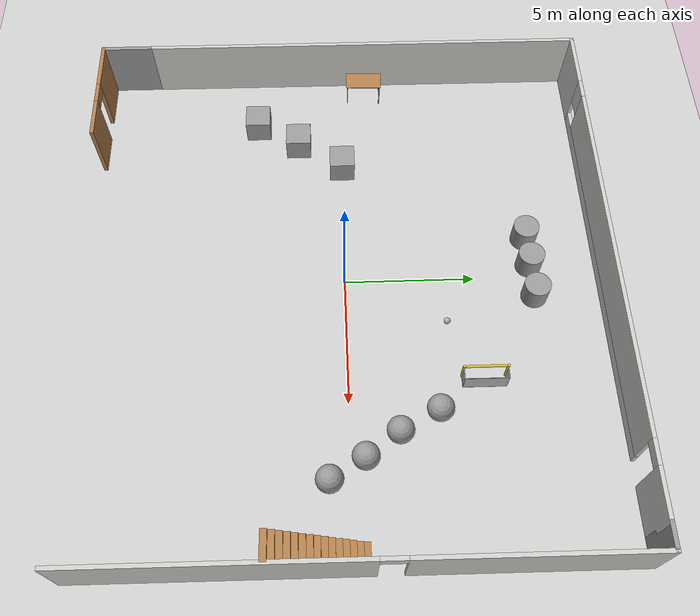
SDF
<sdf version="1.7">
 <world name="default">
  <light name="sun" type="directional">
   <pose>0 0 10 0 -0 0</pose>
   <diffuse>0.8 0.8 0.8 1</diffuse>
   <specular>0.2 0.2 0.2 1</specular>
   <attenuation>
    <range>1000</range>
    <constant>0.9</constant>
    <linear>0.01</linear>
    <quadratic>0.001</quadratic>
   </attenuation>
   <direction>-0.5 0.1 -0.9</direction>
   <spot><inner_angle>0</inner_angle><outer_angle>0</outer_angle><falloff>0</falloff></spot>
  </light>
  <model name="ground_plane">
   <static>1</static>
   <link name="link">
    <collision name="collision">
     <geometry><plane><normal>0 0 1</normal><size>100 100</size></plane></geometry>
     <surface>
      <contact><collide_bitmask>65535</collide_bitmask></contact>
      <friction><ode><mu>100</mu><mu2>50</mu2></ode></friction>
     </surface>
    </collision>
    <visual name="visual">
     <cast_shadows>0</cast_shadows>
     <geometry><plane><normal>0 0 1</normal><size>100 100</size></plane></geometry>
     <material>
      <script><uri>file://media/materials/scripts/gazebo.material</uri><name>Gazebo/Grey</name></script>
     </material>
    </visual>
   </link>
  </model>
  <gravity>0 0 -9.8</gravity>
  <magnetic_field>6e-06 2.3e-05 -4.2e-05</magnetic_field>
  <atmosphere type="adiabatic"/>
  <physics type="ode">
   <max_step_size>0.001</max_step_size>
   <real_time_factor>1</real_time_factor>
   <real_time_update_rate>1000</real_time_update_rate>
  </physics>
  <scene><ambient>0.4 0.4 0.4 1</ambient><background>0.7 0.7 0.7 1</background><shadows>1</shadows></scene>
  <audio><device>default</device></audio>
  <spherical_coordinates>
   <surface_model>EARTH_WGS84</surface_model>
   <latitude_deg>0</latitude_deg>
   <longitude_deg>0</longitude_deg>
   <elevation>0</elevation>
   <heading_deg>0</heading_deg>
  </spherical_coordinates>
  <light name="sun" type="directional">
   <pose>6.57196 4.45328 10 0 -0 0</pose>
   <diffuse>0.8 0.8 0.8 1</diffuse>
   <specular>0.2 0.2 0.2 1</specular>
   <attenuation>
    <range>1000</range>
    <constant>0.9</constant>
    <linear>0.01</linear>
    <quadratic>0.001</quadratic>
   </attenuation>
   <direction>-0.5 0.1 -0.9</direction>
  </light>
  <model name="test">
   <pose>0.437225 -0.003528 0 0 -0 0</pose>
   <link name="Stairs_0">
    <visual name="Stairs_0_Visual_0">
     <pose>9.9714 0.484524 0.083333 0 -0 0</pose>
     <geometry><box><size>1 0.233333 0.166667</size></box></geometry>
     <material>
      <script><uri>file://media/materials/scripts/gazebo.material</uri><name>Gazebo/Wood</name></script>
      <ambient>1 1 1 1</ambient>
     </material>
     <meta><layer>0</layer></meta>
    </visual>
    <collision name="Stairs_0_Collision_0">
     <geometry><box><size>1 0.233333 0.166667</size></box></geometry>
     <pose>9.9714 0.484524 0.083333 0 -0 0</pose>
    </collision>
    <visual name="Stairs_0_Visual_1">
     <pose>9.9714 0.25119 0.25 0 -0 0</pose>
     <geometry><box><size>1 0.233333 0.166667</size></box></geometry>
     <material>
      <script><uri>file://media/materials/scripts/gazebo.material</uri><name>Gazebo/Wood</name></script>
      <ambient>1 1 1 1</ambient>
     </material>
     <meta><layer>0</layer></meta>
    </visual>
    <collision name="Stairs_0_Collision_1">
     <geometry><box><size>1 0.233333 0.166667</size></box></geometry>
     <pose>9.9714 0.25119 0.25 0 -0 0</pose>
    </collision>
    <visual name="Stairs_0_Visual_2">
     <pose>9.9714 0.017857 0.416667 0 -0 0</pose>
     <geometry><box><size>1 0.233333 0.166667</size></box></geometry>
     <material>
      <script><uri>file://media/materials/scripts/gazebo.material</uri><name>Gazebo/Wood</name></script>
      <ambient>1 1 1 1</ambient>
     </material>
     <meta><layer>0</layer></meta>
    </visual>
    <collision name="Stairs_0_Collision_2">
     <geometry><box><size>1 0.233333 0.166667</size></box></geometry>
     <pose>9.9714 0.017857 0.416667 0 -0 0</pose>
    </collision>
    <visual name="Stairs_0_Visual_3">
     <pose>9.9714 -0.215476 0.583333 0 -0 0</pose>
     <geometry><box><size>1 0.233333 0.166667</size></box></geometry>
     <material>
      <script><uri>file://media/materials/scripts/gazebo.material</uri><name>Gazebo/Wood</name></script>
      <ambient>1 1 1 1</ambient>
     </material>
     <meta><layer>0</layer></meta>
    </visual>
    <collision name="Stairs_0_Collision_3">
     <geometry><box><size>1 0.233333 0.166667</size></box></geometry>
     <pose>9.9714 -0.215476 0.583333 0 -0 0</pose>
    </collision>
    <visual name="Stairs_0_Visual_4">
     <pose>9.9714 -0.44881 0.75 0 -0 0</pose>
     <geometry><box><size>1 0.233333 0.166667</size></box></geometry>
     <material>
      <script><uri>file://media/materials/scripts/gazebo.material</uri><name>Gazebo/Wood</name></script>
      <ambient>1 1 1 1</ambient>
     </material>
     <meta><layer>0</layer></meta>
    </visual>
    <collision name="Stairs_0_Collision_4">
     <geometry><box><size>1 0.233333 0.166667</size></box></geometry>
     <pose>9.9714 -0.44881 0.75 0 -0 0</pose>
    </collision>
    <visual name="Stairs_0_Visual_5">
     <pose>9.9714 -0.682143 0.916667 0 -0 0</pose>
     <geometry><box><size>1 0.233333 0.166667</size></box></geometry>
     <material>
      <script><uri>file://media/materials/scripts/gazebo.material</uri><name>Gazebo/Wood</name></script>
      <ambient>1 1 1 1</ambient>
     </material>
     <meta><layer>0</layer></meta>
    </visual>
    <collision name="Stairs_0_Collision_5">
     <geometry><box><size>1 0.233333 0.166667</size></box></geometry>
     <pose>9.9714 -0.682143 0.916667 0 -0 0</pose>
    </collision>
    <visual name="Stairs_0_Visual_6">
     <pose>9.9714 -0.915476 1.08333 0 -0 0</pose>
     <geometry><box><size>1 0.233333 0.166667</size></box></geometry>
     <material>
      <script><uri>file://media/materials/scripts/gazebo.material</uri><name>Gazebo/Wood</name></script>
      <ambient>1 1 1 1</ambient>
     </material>
     <meta><layer>0</layer></meta>
    </visual>
    <collision name="Stairs_0_Collision_6">
     <geometry><box><size>1 0.233333 0.166667</size></box></geometry>
     <pose>9.9714 -0.915476 1.08333 0 -0 0</pose>
    </collision>
    <visual name="Stairs_0_Visual_7">
     <pose>9.9714 -1.14881 1.25 0 -0 0</pose>
     <geometry><box><size>1 0.233333 0.166667</size></box></geometry>
     <material>
      <script><uri>file://media/materials/scripts/gazebo.material</uri><name>Gazebo/Wood</name></script>
      <ambient>1 1 1 1</ambient>
     </material>
     <meta><layer>0</layer></meta>
    </visual>
    <collision name="Stairs_0_Collision_7">
     <geometry><box><size>1 0.233333 0.166667</size></box></geometry>
     <pose>9.9714 -1.14881 1.25 0 -0 0</pose>
    </collision>
    <visual name="Stairs_0_Visual_8">
     <pose>9.9714 -1.38214 1.41667 0 -0 0</pose>
     <geometry><box><size>1 0.233333 0.166667</size></box></geometry>
     <material>
      <script><uri>file://media/materials/scripts/gazebo.material</uri><name>Gazebo/Wood</name></script>
      <ambient>1 1 1 1</ambient>
     </material>
     <meta><layer>0</layer></meta>
    </visual>
    <collision name="Stairs_0_Collision_8">
     <geometry><box><size>1 0.233333 0.166667</size></box></geometry>
     <pose>9.9714 -1.38214 1.41667 0 -0 0</pose>
    </collision>
    <visual name="Stairs_0_Visual_9">
     <pose>9.9714 -1.61548 1.58333 0 -0 0</pose>
     <geometry><box><size>1 0.233333 0.166667</size></box></geometry>
     <material>
      <script><uri>file://media/materials/scripts/gazebo.material</uri><name>Gazebo/Wood</name></script>
      <ambient>1 1 1 1</ambient>
     </material>
     <meta><layer>0</layer></meta>
    </visual>
    <collision name="Stairs_0_Collision_9">
     <geometry><box><size>1 0.233333 0.166667</size></box></geometry>
     <pose>9.9714 -1.61548 1.58333 0 -0 0</pose>
    </collision>
    <visual name="Stairs_0_Visual_10">
     <pose>9.9714 -1.84881 1.75 0 -0 0</pose>
     <geometry><box><size>1 0.233333 0.166667</size></box></geometry>
     <material>
      <script><uri>file://media/materials/scripts/gazebo.material</uri><name>Gazebo/Wood</name></script>
      <ambient>1 1 1 1</ambient>
     </material>
     <meta><layer>0</layer></meta>
    </visual>
    <collision name="Stairs_0_Collision_10">
     <geometry><box><size>1 0.233333 0.166667</size></box></geometry>
     <pose>9.9714 -1.84881 1.75 0 -0 0</pose>
    </collision>
    <visual name="Stairs_0_Visual_11">
     <pose>9.9714 -2.08214 1.91667 0 -0 0</pose>
     <geometry><box><size>1 0.233333 0.166667</size></box></geometry>
     <material>
      <script><uri>file://media/materials/scripts/gazebo.material</uri><name>Gazebo/Wood</name></script>
      <ambient>1 1 1 1</ambient>
     </material>
     <meta><layer>0</layer></meta>
    </visual>
    <collision name="Stairs_0_Collision_11">
     <geometry><box><size>1 0.233333 0.166667</size></box></geometry>
     <pose>9.9714 -2.08214 1.91667 0 -0 0</pose>
    </collision>
    <visual name="Stairs_0_Visual_12">
     <pose>9.9714 -2.31548 2.08333 0 -0 0</pose>
     <geometry><box><size>1 0.233333 0.166667</size></box></geometry>
     <material>
      <script><uri>file://media/materials/scripts/gazebo.material</uri><name>Gazebo/Wood</name></script>
      <ambient>1 1 1 1</ambient>
     </material>
     <meta><layer>0</layer></meta>
    </visual>
    <collision name="Stairs_0_Collision_12">
     <geometry><box><size>1 0.233333 0.166667</size></box></geometry>
     <pose>9.9714 -2.31548 2.08333 0 -0 0</pose>
    </collision>
    <visual name="Stairs_0_Visual_13">
     <pose>9.9714 -2.54881 2.25 0 -0 0</pose>
     <geometry><box><size>1 0.233333 0.166667</size></box></geometry>
     <material>
      <script><uri>file://media/materials/scripts/gazebo.material</uri><name>Gazebo/Wood</name></script>
      <ambient>1 1 1 1</ambient>
     </material>
     <meta><layer>0</layer></meta>
    </visual>
    <collision name="Stairs_0_Collision_13">
     <geometry><box><size>1 0.233333 0.166667</size></box></geometry>
     <pose>9.9714 -2.54881 2.25 0 -0 0</pose>
    </collision>
    <visual name="Stairs_0_Visual_14">
     <pose>9.9714 -2.78214 2.41667 0 -0 0</pose>
     <geometry><box><size>1 0.233333 0.166667</size></box></geometry>
     <material>
      <script><uri>file://media/materials/scripts/gazebo.material</uri><name>Gazebo/Wood</name></script>
      <ambient>1 1 1 1</ambient>
     </material>
     <meta><layer>0</layer></meta>
    </visual>
    <collision name="Stairs_0_Collision_14">
     <geometry><box><size>1 0.233333 0.166667</size></box></geometry>
     <pose>9.9714 -2.78214 2.41667 0 -0 0</pose>
    </collision>
   </link>
   <link name="Wall_12">
    <pose>-0.425 9.82768 0 0 -0 0</pose>
    <visual name="Wall_12_Visual_0">
     <pose>-8.94234 0 1.25 0 -0 0</pose>
     <geometry><box><size>2.36532 0.15 2.5</size></box></geometry>
     <material>
      <script><uri>file://media/materials/scripts/gazebo.material</uri><name>Gazebo/CeilingTiled</name></script>
      <ambient>1 1 1 1</ambient>
     </material>
     <meta><layer>0</layer></meta>
    </visual>
    <collision name="Wall_12_Collision_0">
     <geometry><box><size>2.36532 0.15 2.5</size></box></geometry>
     <pose>-8.94234 0 1.25 0 -0 0</pose>
    </collision>
    <visual name="Wall_12_Visual_1">
     <pose>9.19435 0 1.25 0 -0 0</pose>
     <geometry><box><size>1.8613 0.15 2.5</size></box></geometry>
     <material>
      <script><uri>file://media/materials/scripts/gazebo.material</uri><name>Gazebo/CeilingTiled</name></script>
      <ambient>1 1 1 1</ambient>
     </material>
     <meta><layer>0</layer></meta>
    </visual>
    <collision name="Wall_12_Collision_1">
     <geometry><box><size>1.8613 0.15 2.5</size></box></geometry>
     <pose>9.19435 0 1.25 0 -0 0</pose>
    </collision>
    <visual name="Wall_12_Visual_2">
     <pose>-0.197993 0 0.25 0 -0 0</pose>
     <geometry><box><size>15.1234 0.15 0.5</size></box></geometry>
     <material>
      <script><uri>file://media/materials/scripts/gazebo.material</uri><name>Gazebo/CeilingTiled</name></script>
      <ambient>1 1 1 1</ambient>
     </material>
     <meta><layer>0</layer></meta>
    </visual>
    <collision name="Wall_12_Collision_2">
     <geometry><box><size>15.1234 0.15 0.5</size></box></geometry>
     <pose>-0.197993 0 0.25 0 -0 0</pose>
    </collision>
    <visual name="Wall_12_Visual_3">
     <pose>0.202007 0 1.5 0 -0 0</pose>
     <geometry><box><size>14.3234 0.15 2</size></box></geometry>
     <material>
      <script><uri>file://media/materials/scripts/gazebo.material</uri><name>Gazebo/CeilingTiled</name></script>
      <ambient>1 1 1 1</ambient>
     </material>
     <meta><layer>0</layer></meta>
    </visual>
    <collision name="Wall_12_Collision_3">
     <geometry><box><size>14.3234 0.15 2</size></box></geometry>
     <pose>0.202007 0 1.5 0 -0 0</pose>
    </collision>
    <visual name="Wall_12_Visual_4">
     <pose>-7.35968 0 1.9 0 -0 0</pose>
     <geometry><box><size>0.8 0.15 1.2</size></box></geometry>
     <material>
      <script><uri>file://media/materials/scripts/gazebo.material</uri><name>Gazebo/CeilingTiled</name></script>
      <ambient>1 1 1 1</ambient>
     </material>
     <meta><layer>0</layer></meta>
    </visual>
    <collision name="Wall_12_Collision_4">
     <geometry><box><size>0.8 0.15 1.2</size></box></geometry>
     <pose>-7.35968 0 1.9 0 -0 0</pose>
    </collision>
    <visual name="Wall_12_Visual_5">
     <pose>7.8137 0 2.25 0 -0 0</pose>
     <geometry><box><size>0.9 0.15 0.5</size></box></geometry>
     <material>
      <script><uri>file://media/materials/scripts/gazebo.material</uri><name>Gazebo/CeilingTiled</name></script>
      <ambient>1 1 1 1</ambient>
     </material>
     <meta><layer>0</layer></meta>
    </visual>
    <collision name="Wall_12_Collision_5">
     <geometry><box><size>0.9 0.15 0.5</size></box></geometry>
     <pose>7.8137 0 2.25 0 -0 0</pose>
    </collision>
   </link>
   <link name="Wall_13">
    <collision name="Wall_13_Collision">
     <geometry><box><size>1 0.15 2.5</size></box></geometry>
     <pose>0 0 1.25 0 -0 0</pose>
    </collision>
    <visual name="Wall_13_Visual">
     <pose>0 0 1.25 0 -0 0</pose>
     <geometry><box><size>1 0.15 2.5</size></box></geometry>
     <material>
      <script><uri>file://media/materials/scripts/gazebo.material</uri><name>Gazebo/Grey</name></script>
      <ambient>1 1 1 1</ambient>
     </material>
     <meta><layer>0</layer></meta>
    </visual>
    <pose>10.05 9.82768 0 0 -0 0</pose>
   </link>
   <link name="Wall_14">
    <pose>10.475 0.15268 0 0 -0 -1.5708</pose>
    <visual name="Wall_14_Visual_0">
     <pose>-5.63299 0 1.25 0 -0 0</pose>
     <geometry><box><size>8.23401 0.15 2.5</size></box></geometry>
     <material>
      <script><uri>file://media/materials/scripts/gazebo.material</uri><name>Gazebo/CeilingTiled</name></script>
      <ambient>1 1 1 1</ambient>
     </material>
     <meta><layer>0</layer></meta>
    </visual>
    <collision name="Wall_14_Collision_0">
     <geometry><box><size>8.23401 0.15 2.5</size></box></geometry>
     <pose>-5.63299 0 1.25 0 -0 0</pose>
    </collision>
    <visual name="Wall_14_Visual_1">
     <pose>4.56701 0 1.25 0 -0 0</pose>
     <geometry><box><size>10.366 0.15 2.5</size></box></geometry>
     <material>
      <script><uri>file://media/materials/scripts/gazebo.material</uri><name>Gazebo/CeilingTiled</name></script>
      <ambient>1 1 1 1</ambient>
     </material>
     <meta><layer>0</layer></meta>
    </visual>
    <collision name="Wall_14_Collision_1">
     <geometry><box><size>10.366 0.15 2.5</size></box></geometry>
     <pose>4.56701 0 1.25 0 -0 0</pose>
    </collision>
    <visual name="Wall_14_Visual_2">
     <pose>-1.06599 0 2.25 0 -0 0</pose>
     <geometry><box><size>0.9 0.15 0.5</size></box></geometry>
     <material>
      <script><uri>file://media/materials/scripts/gazebo.material</uri><name>Gazebo/CeilingTiled</name></script>
      <ambient>1 1 1 1</ambient>
     </material>
     <meta><layer>0</layer></meta>
    </visual>
    <collision name="Wall_14_Collision_2">
     <geometry><box><size>0.9 0.15 0.5</size></box></geometry>
     <pose>-1.06599 0 2.25 0 -0 0</pose>
    </collision>
   </link>
   <link name="Wall_7">
    <collision name="Wall_7_Collision">
     <geometry><box><size>17.75 0.15 2.5</size></box></geometry>
     <pose>0 0 1.25 0 -0 0</pose>
    </collision>
    <visual name="Wall_7_Visual">
     <pose>0 0 1.25 0 -0 0</pose>
     <geometry><box><size>17.75 0.15 2.5</size></box></geometry>
     <material>
      <script><uri>file://media/materials/scripts/gazebo.material</uri><name>Gazebo/CeilingTiled</name></script>
      <ambient>1 1 1 1</ambient>
     </material>
     <meta><layer>0</layer></meta>
    </visual>
    <pose>-10.475 1.02768 0 0 -0 -1.5708</pose>
   </link>
   <link name="Wall_8">
    <collision name="Wall_8_Collision">
     <geometry><box><size>2.09775 0.15 2.5</size></box></geometry>
     <pose>0 0 1.25 0 -0 0</pose>
    </collision>
    <visual name="Wall_8_Visual">
     <pose>0 0 1.25 0 -0 0</pose>
     <geometry><box><size>2.09775 0.15 2.5</size></box></geometry>
     <material>
      <script><uri>file://media/materials/scripts/gazebo.material</uri><name>Gazebo/Grey</name></script>
      <ambient>1 1 1 1</ambient>
     </material>
     <meta><layer>0</layer></meta>
    </visual>
    <pose>-10.475 -8.85381 0 0 -0 -1.5708</pose>
   </link>
   <link name="Wall_9">
    <pose>-8.3 -9.82768 0 0 -0 0</pose>
    <visual name="Wall_9_Visual_0">
     <pose>-1.25376 0 1.25 0 -0 0</pose>
     <geometry><box><size>1.99248 0.15 2.5</size></box></geometry>
     <material>
      <script><uri>file://media/materials/scripts/gazebo.material</uri><name>Gazebo/Wood</name></script>
      <ambient>1 1 1 1</ambient>
     </material>
     <meta><layer>0</layer></meta>
    </visual>
    <collision name="Wall_9_Collision_0">
     <geometry><box><size>1.99248 0.15 2.5</size></box></geometry>
     <pose>-1.25376 0 1.25 0 -0 0</pose>
    </collision>
    <visual name="Wall_9_Visual_1">
     <pose>1.44624 0 1.25 0 -0 0</pose>
     <geometry><box><size>1.60752 0.15 2.5</size></box></geometry>
     <material>
      <script><uri>file://media/materials/scripts/gazebo.material</uri><name>Gazebo/Wood</name></script>
      <ambient>1 1 1 1</ambient>
     </material>
     <meta><layer>0</layer></meta>
    </visual>
    <collision name="Wall_9_Collision_1">
     <geometry><box><size>1.60752 0.15 2.5</size></box></geometry>
     <pose>1.44624 0 1.25 0 -0 0</pose>
    </collision>
    <visual name="Wall_9_Visual_2">
     <pose>0.192478 0 2.25 0 -0 0</pose>
     <geometry><box><size>0.9 0.15 0.5</size></box></geometry>
     <material>
      <script><uri>file://media/materials/scripts/gazebo.material</uri><name>Gazebo/Wood</name></script>
      <ambient>1 1 1 1</ambient>
     </material>
     <meta><layer>0</layer></meta>
    </visual>
    <collision name="Wall_9_Collision_2">
     <geometry><box><size>0.9 0.15 0.5</size></box></geometry>
     <pose>0.192478 0 2.25 0 -0 0</pose>
    </collision>
   </link>
   <static>1</static>
  </model>
  <model name="table">
   <static>1</static>
   <link name="link">
    <collision name="surface">
     <pose>0 0 1 0 -0 0</pose>
     <geometry><box><size>1.5 0.8 0.03</size></box></geometry>
     <surface><friction><ode><mu>0.6</mu><mu2>0.6</mu2></ode></friction></surface>
    </collision>
    <visual name="visual1">
     <pose>0 0 1 0 -0 0</pose>
     <geometry><box><size>1.5 0.8 0.03</size></box></geometry>
     <material>
      <script><uri>file://media/materials/scripts/gazebo.material</uri><name>Gazebo/Wood</name></script>
     </material>
    </visual>
    <collision name="front_left_leg">
     <pose>0.68 0.38 0.5 0 -0 0</pose>
     <geometry><cylinder><radius>0.02</radius><length>1</length></cylinder></geometry>
    </collision>
    <visual name="front_left_leg">
     <pose>0.68 0.38 0.5 0 -0 0</pose>
     <geometry><cylinder><radius>0.02</radius><length>1</length></cylinder></geometry>
     <material>
      <script><uri>file://media/materials/scripts/gazebo.material</uri><name>Gazebo/Grey</name></script>
     </material>
    </visual>
    <collision name="front_right_leg">
     <pose>0.68 -0.38 0.5 0 -0 0</pose>
     <geometry><cylinder><radius>0.02</radius><length>1</length></cylinder></geometry>
    </collision>
    <visual name="front_right_leg">
     <pose>0.68 -0.38 0.5 0 -0 0</pose>
     <geometry><cylinder><radius>0.02</radius><length>1</length></cylinder></geometry>
     <material>
      <script><uri>file://media/materials/scripts/gazebo.material</uri><name>Gazebo/Grey</name></script>
     </material>
    </visual>
    <collision name="back_right_leg">
     <pose>-0.68 -0.38 0.5 0 -0 0</pose>
     <geometry><cylinder><radius>0.02</radius><length>1</length></cylinder></geometry>
    </collision>
    <visual name="back_right_leg">
     <pose>-0.68 -0.38 0.5 0 -0 0</pose>
     <geometry><cylinder><radius>0.02</radius><length>1</length></cylinder></geometry>
     <material>
      <script><uri>file://media/materials/scripts/gazebo.material</uri><name>Gazebo/Grey</name></script>
     </material>
    </visual>
    <collision name="back_left_leg">
     <pose>-0.68 0.38 0.5 0 -0 0</pose>
     <geometry><cylinder><radius>0.02</radius><length>1</length></cylinder></geometry>
    </collision>
    <visual name="back_left_leg">
     <pose>-0.68 0.38 0.5 0 -0 0</pose>
     <geometry><cylinder><radius>0.02</radius><length>1</length></cylinder></geometry>
     <material>
      <script><uri>file://media/materials/scripts/gazebo.material</uri><name>Gazebo/Grey</name></script>
     </material>
    </visual>
   </link>
   <pose>-9.32648 1.04879 0 0 -0 1.52673</pose>
  </model>
  <model name="RoboCup 2014 SPL Goal">
   <static>1</static>
   <link name="left_post">
    <pose>0 0.8 0.45 0 -0 0</pose>
    <collision name="collision">
     <geometry><cylinder><radius>0.05</radius><length>0.9</length></cylinder></geometry>
    </collision>
    <visual name="visual">
     <geometry><cylinder><radius>0.05</radius><length>0.9</length></cylinder></geometry>
     <material>
      <script><uri>file://media/materials/scripts/gazebo.material</uri><name>Gazebo/ZincYellow</name></script>
     </material>
    </visual>
   </link>
   <link name="left_support_horiz_lower">
    <pose>0.24 0.8 0.01 0 -0 0</pose>
    <collision name="collision"><geometry><box><size>0.38 0.02 0.02</size></box></geometry></collision>
    <visual name="visual">
     <geometry><box><size>0.38 0.02 0.02</size></box></geometry>
     <material>
      <script><uri>file://media/materials/scripts/gazebo.material</uri><name>Gazebo/White</name></script>
     </material>
    </visual>
   </link>
   <link name="left_support_horiz_upper">
    <pose>0.24 0.8 0.79 0 -0 0</pose>
    <collision name="collision"><geometry><box><size>0.38 0.02 0.02</size></box></geometry></collision>
    <visual name="visual">
     <geometry><box><size>0.38 0.02 0.02</size></box></geometry>
     <material>
      <script><uri>file://media/materials/scripts/gazebo.material</uri><name>Gazebo/White</name></script>
     </material>
    </visual>
   </link>
   <link name="left_support_vertical">
    <pose>0.44 0.8 0.4 3.14159 1.57079 3.14159</pose>
    <collision name="collision"><geometry><box><size>0.8 0.02 0.02</size></box></geometry></collision>
    <visual name="visual">
     <geometry><box><size>0.8 0.02 0.02</size></box></geometry>
     <material>
      <script><uri>file://media/materials/scripts/gazebo.material</uri><name>Gazebo/White</name></script>
     </material>
    </visual>
   </link>
   <link name="right_support_horiz_lower">
    <pose>0.24 -0.8 0.01 0 -0 0</pose>
    <collision name="collision"><geometry><box><size>0.38 0.02 0.02</size></box></geometry></collision>
    <visual name="visual">
     <geometry><box><size>0.38 0.02 0.02</size></box></geometry>
     <material>
      <script><uri>file://media/materials/scripts/gazebo.material</uri><name>Gazebo/White</name></script>
     </material>
    </visual>
   </link>
   <link name="right_support_horiz_upper">
    <pose>0.24 -0.8 0.79 0 -0 0</pose>
    <collision name="collision"><geometry><box><size>0.38 0.02 0.02</size></box></geometry></collision>
    <visual name="visual">
     <geometry><box><size>0.38 0.02 0.02</size></box></geometry>
     <material>
      <script><uri>file://media/materials/scripts/gazebo.material</uri><name>Gazebo/White</name></script>
     </material>
    </visual>
   </link>
   <link name="right_support_vertical">
    <pose>0.44 -0.8 0.4 3.14159 1.57079 3.14159</pose>
    <collision name="collision"><geometry><box><size>0.8 0.02 0.02</size></box></geometry></collision>
    <visual name="visual">
     <geometry><box><size>0.8 0.02 0.02</size></box></geometry>
     <material>
      <script><uri>file://media/materials/scripts/gazebo.material</uri><name>Gazebo/White</name></script>
     </material>
    </visual>
   </link>
   <link name="center_support_horiz_lower">
    <pose>0.44 0 0.01 3.14159 1.57079 3.14159</pose>
    <collision name="collision"><geometry><box><size>0.02 1.58 0.02</size></box></geometry></collision>
    <visual name="visual">
     <geometry><box><size>0.02 1.58 0.02</size></box></geometry>
     <material>
      <script><uri>file://media/materials/scripts/gazebo.material</uri><name>Gazebo/White</name></script>
     </material>
    </visual>
   </link>
   <link name="center_support_horiz_upper">
    <pose>0.44 0 0.79 3.14159 1.57079 3.14159</pose>
    <collision name="collision"><geometry><box><size>0.02 1.58 0.02</size></box></geometry></collision>
    <visual name="visual">
     <geometry><box><size>0.02 1.58 0.02</size></box></geometry>
     <material>
      <script><uri>file://media/materials/scripts/gazebo.material</uri><name>Gazebo/White</name></script>
     </material>
    </visual>
   </link>
   <link name="right_post">
    <pose>0 -0.8 0.45 0 -0 0</pose>
    <collision name="collision">
     <geometry><cylinder><radius>0.05</radius><length>0.9</length></cylinder></geometry>
    </collision>
    <visual name="visual">
     <geometry><cylinder><radius>0.05</radius><length>0.9</length></cylinder></geometry>
     <material>
      <script><uri>file://media/materials/scripts/gazebo.material</uri><name>Gazebo/ZincYellow</name></script>
     </material>
    </visual>
   </link>
   <link name="crossbar">
    <pose>0 0 0.85 1.57 1.57 0</pose>
    <collision name="collision">
     <geometry><cylinder><radius>0.05</radius><length>1.5</length></cylinder></geometry>
    </collision>
    <visual name="visual">
     <geometry><cylinder><radius>0.05</radius><length>1.5</length></cylinder></geometry>
     <material>
      <script><uri>file://media/materials/scripts/gazebo.material</uri><name>Gazebo/ZincYellow</name></script>
     </material>
    </visual>
   </link>
   <link name="center_net">
    <pose>0.44 0 0.4 0 -0 0</pose>
    <collision name="collision"><geometry><box><size>0.01 1.6 0.8</size></box></geometry></collision>
    <visual name="visual">
     <geometry><box><size>0.01 1.6 0.8</size></box></geometry>
     <material>
      <script>
       <uri>model://robocup09_spl_field/materials/scripts/</uri>
       <uri>model://robocup09_spl_field/materials/textures/</uri>
       <name>RoboCup/Net</name>
      </script>
     </material>
    </visual>
   </link>
   <link name="left_net">
    <pose>0.24 0.8 0.4 0 -0 0</pose>
    <collision name="collision"><geometry><box><size>0.38 0.01 0.76</size></box></geometry></collision>
    <visual name="visual">
     <geometry><box><size>0.38 0.01 0.76</size></box></geometry>
     <material>
      <script>
       <uri>model://robocup09_spl_field/materials/scripts/</uri>
       <uri>model://robocup09_spl_field/materials/textures/</uri>
       <name>RoboCup/Net</name>
      </script>
     </material>
    </visual>
   </link>
   <link name="right_net">
    <pose>0.24 -0.8 0.4 0 -0 0</pose>
    <collision name="collision"><geometry><box><size>0.38 0.01 0.76</size></box></geometry></collision>
    <visual name="visual">
     <geometry><box><size>0.38 0.01 0.76</size></box></geometry>
     <material>
      <script>
       <uri>model://robocup09_spl_field/materials/scripts/</uri>
       <uri>model://robocup09_spl_field/materials/textures/</uri>
       <name>RoboCup/Net</name>
      </script>
     </material>
    </visual>
   </link>
   <pose>4.02473 4.96947 0 0 -0 0</pose>
  </model>
  <model name="frc2016_ball">
   <pose>1.83283 3.8119 0.127 0 -0 0</pose>
   <link name="link">
    <inertial>
     <mass>0.213</mass>
     <inertia>
      <ixx>0.00322667</ixx>
      <ixy>0</ixy>
      <ixz>0</ixz>
      <iyy>0.00322667</iyy>
      <iyz>0</iyz>
      <izz>0.00322667</izz>
     </inertia>
    </inertial>
    <visual name="visual"><geometry><sphere><radius>0.127</radius></sphere></geometry></visual>
    <collision name="collision">
     <geometry><sphere><radius>0.127</radius></sphere></geometry>
     <surface>
      <bounce><restitution_coefficient>0.15937</restitution_coefficient><threshold>0</threshold></bounce>
      <contact><ode><max_vel>100</max_vel><min_depth>0.001</min_depth></ode></contact>
     </surface>
    </collision>
   </link>
  </model>
  <model name="unit_box">
   <pose>-7.53013 -3.44831 0.499995 0 -1e-05 0</pose>
   <link name="link">
    <inertial>
     <mass>1</mass>
     <inertia>
      <ixx>0.166667</ixx>
      <ixy>0</ixy>
      <ixz>0</ixz>
      <iyy>0.166667</iyy>
      <iyz>0</iyz>
      <izz>0.166667</izz>
     </inertia>
    </inertial>
    <collision name="collision"><geometry><box><size>1 1 1</size></box></geometry></collision>
    <visual name="visual">
     <geometry><box><size>1 1 1</size></box></geometry>
     <material>
      <script><name>Gazebo/Grey</name><uri>file://media/materials/scripts/gazebo.material</uri></script>
     </material>
    </visual>
   </link>
  </model>
  <model name="unit_box_0">
   <pose>-6.53728 -1.75984 0.499995 1e-05 -0 0</pose>
   <link name="link">
    <inertial>
     <mass>1</mass>
     <inertia>
      <ixx>0.166667</ixx>
      <ixy>0</ixy>
      <ixz>0</ixz>
      <iyy>0.166667</iyy>
      <iyz>0</iyz>
      <izz>0.166667</izz>
     </inertia>
    </inertial>
    <collision name="collision"><geometry><box><size>1 1 1</size></box></geometry></collision>
    <visual name="visual">
     <geometry><box><size>1 1 1</size></box></geometry>
     <material>
      <script><name>Gazebo/Grey</name><uri>file://media/materials/scripts/gazebo.material</uri></script>
     </material>
    </visual>
   </link>
  </model>
  <model name="unit_box_1">
   <pose>-5.33979 0.026042 0.499995 0 -1e-05 0</pose>
   <link name="link">
    <inertial>
     <mass>1</mass>
     <inertia>
      <ixx>0.166667</ixx>
      <ixy>0</ixy>
      <ixz>0</ixz>
      <iyy>0.166667</iyy>
      <iyz>0</iyz>
      <izz>0.166667</izz>
     </inertia>
    </inertial>
    <collision name="collision"><geometry><box><size>1 1 1</size></box></geometry></collision>
    <visual name="visual">
     <geometry><box><size>1 1 1</size></box></geometry>
     <material>
      <script><name>Gazebo/Grey</name><uri>file://media/materials/scripts/gazebo.material</uri></script>
     </material>
    </visual>
   </link>
  </model>
  <model name="unit_sphere">
   <pose>7.85576 -0.731176 0.5 0 -0 0</pose>
   <link name="link">
    <inertial>
     <mass>1</mass>
     <inertia><ixx>0.1</ixx><ixy>0</ixy><ixz>0</ixz><iyy>0.1</iyy><iyz>0</iyz><izz>0.1</izz></inertia>
    </inertial>
    <collision name="collision"><geometry><sphere><radius>0.5</radius></sphere></geometry></collision>
    <visual name="visual">
     <geometry><sphere><radius>0.5</radius></sphere></geometry>
     <material>
      <script><name>Gazebo/Grey</name><uri>file://media/materials/scripts/gazebo.material</uri></script>
     </material>
    </visual>
   </link>
  </model>
  <model name="unit_sphere_0">
   <pose>7.08562 0.542289 0.5 0 -0 0</pose>
   <link name="link">
    <inertial>
     <mass>1</mass>
     <inertia><ixx>0.1</ixx><ixy>0</ixy><ixz>0</ixz><iyy>0.1</iyy><iyz>0</iyz><izz>0.1</izz></inertia>
    </inertial>
    <collision name="collision"><geometry><sphere><radius>0.5</radius></sphere></geometry></collision>
    <visual name="visual">
     <geometry><sphere><radius>0.5</radius></sphere></geometry>
     <material>
      <script><name>Gazebo/Grey</name><uri>file://media/materials/scripts/gazebo.material</uri></script>
     </material>
    </visual>
   </link>
  </model>
  <model name="unit_sphere_1">
   <pose>6.18627 1.79327 0.5 0 -0 0</pose>
   <link name="link">
    <inertial>
     <mass>1</mass>
     <inertia><ixx>0.1</ixx><ixy>0</ixy><ixz>0</ixz><iyy>0.1</iyy><iyz>0</iyz><izz>0.1</izz></inertia>
    </inertial>
    <collision name="collision"><geometry><sphere><radius>0.5</radius></sphere></geometry></collision>
    <visual name="visual">
     <geometry><sphere><radius>0.5</radius></sphere></geometry>
     <material>
      <script><name>Gazebo/Grey</name><uri>file://media/materials/scripts/gazebo.material</uri></script>
     </material>
    </visual>
   </link>
  </model>
  <model name="unit_sphere_2">
   <pose>5.41674 3.25678 0.5 0 -0 0</pose>
   <link name="link">
    <inertial>
     <mass>1</mass>
     <inertia><ixx>0.1</ixx><ixy>0</ixy><ixz>0</ixz><iyy>0.1</iyy><iyz>0</iyz><izz>0.1</izz></inertia>
    </inertial>
    <collision name="collision"><geometry><sphere><radius>0.5</radius></sphere></geometry></collision>
    <visual name="visual">
     <geometry><sphere><radius>0.5</radius></sphere></geometry>
     <material>
      <script><name>Gazebo/Grey</name><uri>file://media/materials/scripts/gazebo.material</uri></script>
     </material>
    </visual>
   </link>
  </model>
  <model name="unit_cylinder">
   <pose>-1.75518 7.13018 0.499997 3e-06 3e-06 0</pose>
   <link name="link">
    <inertial>
     <mass>1</mass>
     <inertia><ixx>0.145833</ixx><ixy>0</ixy><ixz>0</ixz><iyy>0.145833</iyy><iyz>0</iyz><izz>0.125</izz></inertia>
    </inertial>
    <collision name="collision">
     <geometry><cylinder><radius>0.5</radius><length>1</length></cylinder></geometry>
    </collision>
    <visual name="visual">
     <geometry><cylinder><radius>0.5</radius><length>1</length></cylinder></geometry>
     <material>
      <script><name>Gazebo/Grey</name><uri>file://media/materials/scripts/gazebo.material</uri></script>
     </material>
    </visual>
   </link>
  </model>
  <model name="unit_cylinder_0">
   <pose>-0.523537 7.17932 0.499993 -3e-06 -4e-06 -0</pose>
   <link name="link">
    <inertial>
     <mass>1</mass>
     <inertia><ixx>0.145833</ixx><ixy>0</ixy><ixz>0</ixz><iyy>0.145833</iyy><iyz>0</iyz><izz>0.125</izz></inertia>
    </inertial>
    <collision name="collision">
     <geometry><cylinder><radius>0.5</radius><length>1</length></cylinder></geometry>
    </collision>
    <visual name="visual">
     <geometry><cylinder><radius>0.5</radius><length>1</length></cylinder></geometry>
     <material>
      <script><name>Gazebo/Grey</name><uri>file://media/materials/scripts/gazebo.material</uri></script>
     </material>
    </visual>
   </link>
  </model>
  <model name="unit_cylinder_1">
   <pose>0.816606 7.23695 0.499997 3e-06 4e-06 -0</pose>
   <link name="link">
    <inertial>
     <mass>1</mass>
     <inertia><ixx>0.145833</ixx><ixy>0</ixy><ixz>0</ixz><iyy>0.145833</iyy><iyz>0</iyz><izz>0.125</izz></inertia>
    </inertial>
    <collision name="collision">
     <geometry><cylinder><radius>0.5</radius><length>1</length></cylinder></geometry>
    </collision>
    <visual name="visual">
     <geometry><cylinder><radius>0.5</radius><length>1</length></cylinder></geometry>
     <material>
      <script><name>Gazebo/Grey</name><uri>file://media/materials/scripts/gazebo.material</uri></script>
     </material>
    </visual>
   </link>
  </model>
 </world>
</sdf>
